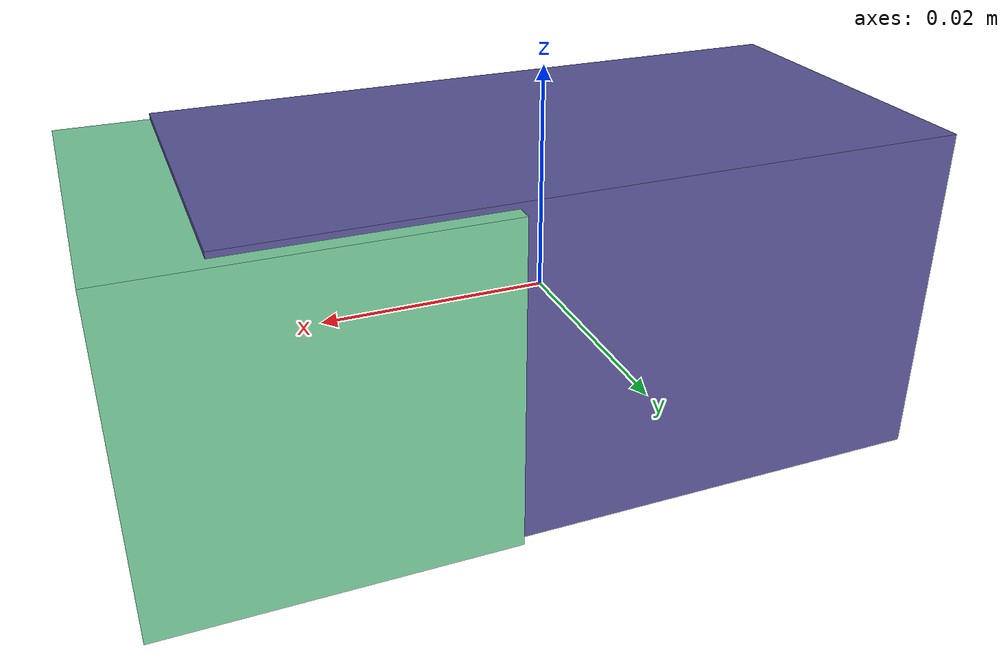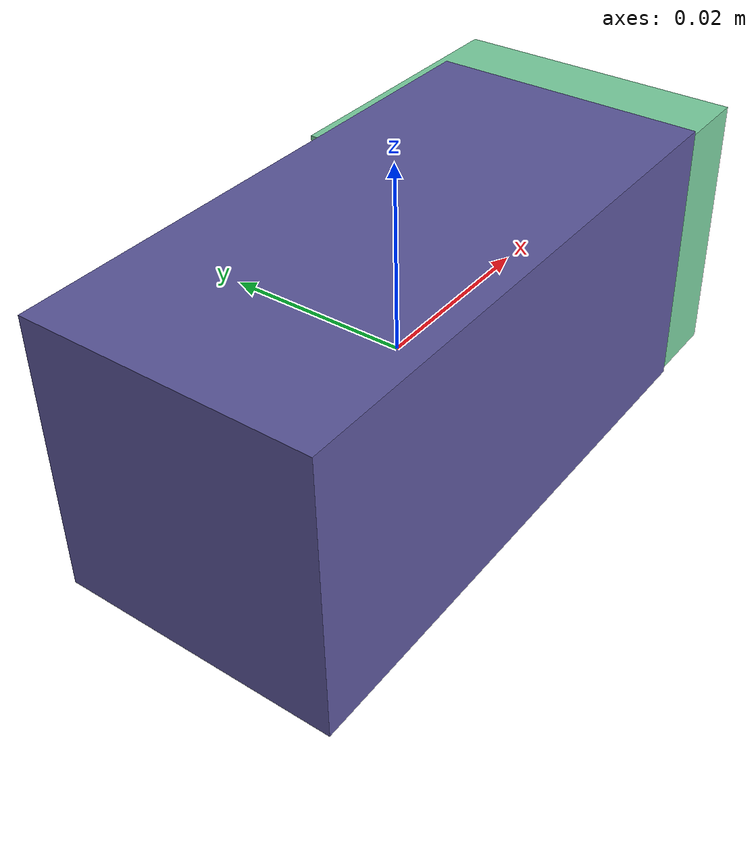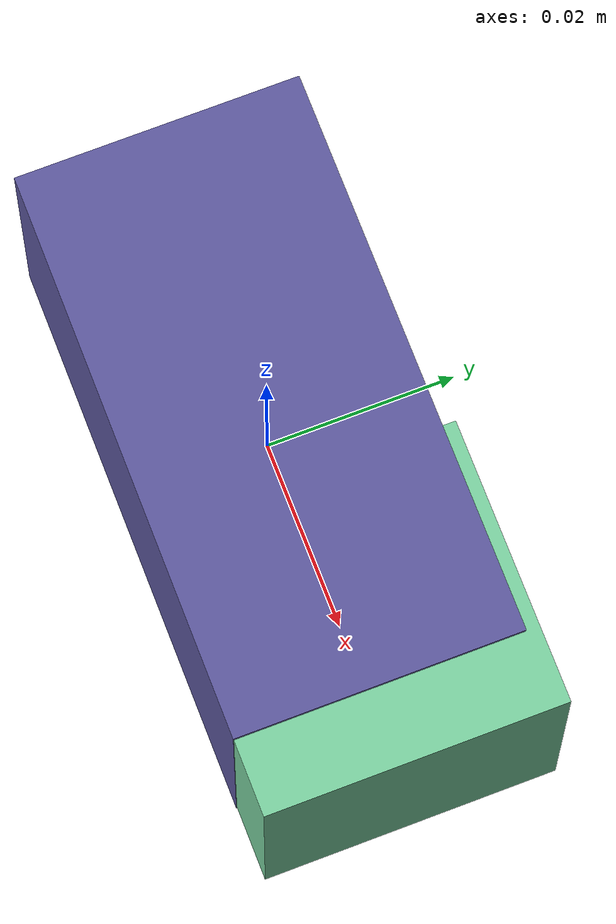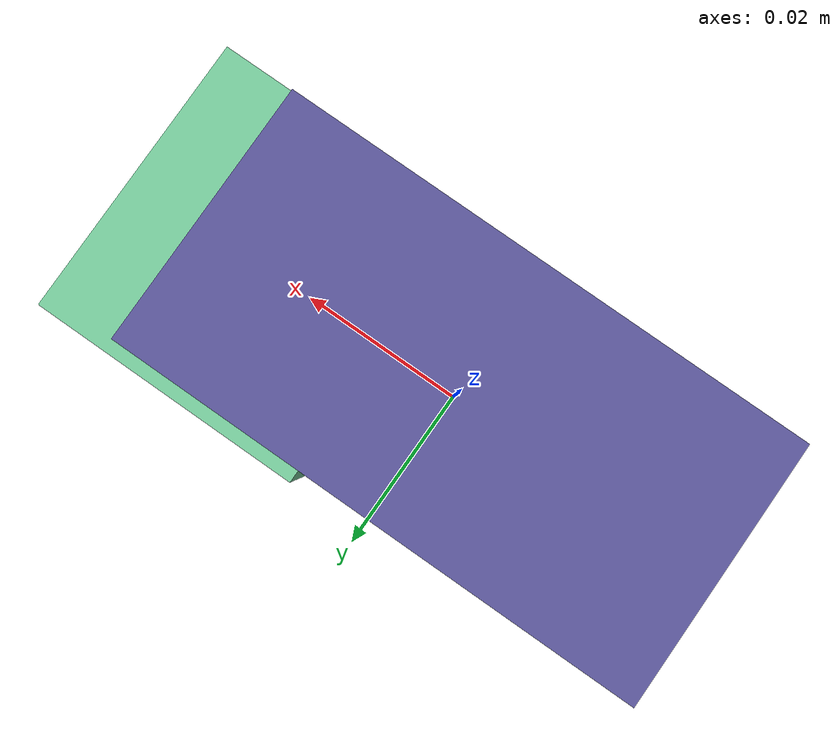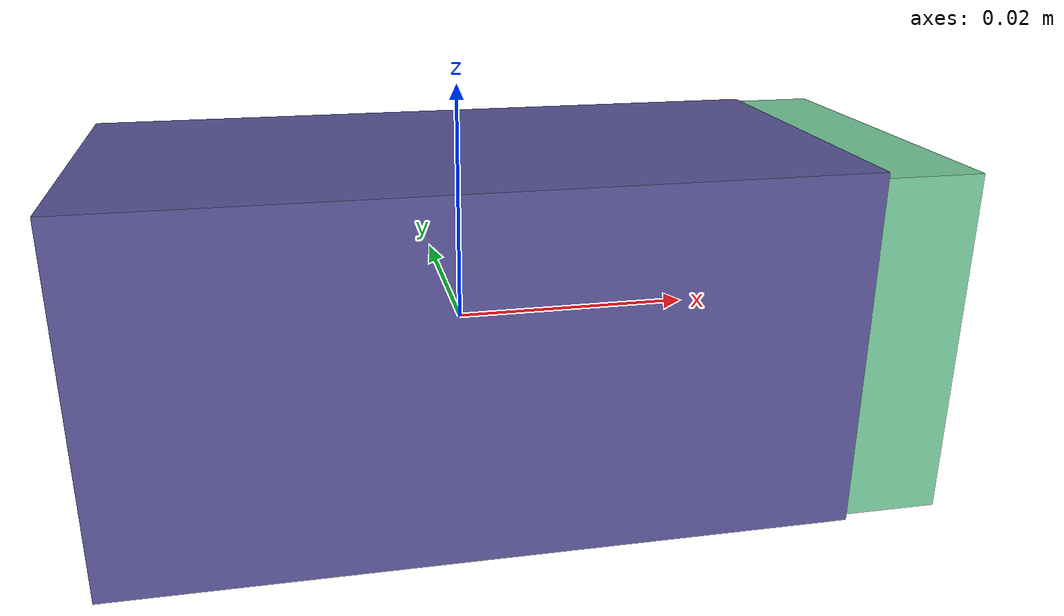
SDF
<sdf version="1.4"><world name="default"><model name="object0"><link name="link1"><pose>0 0 0 0 0 0</pose><inertial><pose>0 0 0 0 0 0</pose><mass>0.03273769193272248</mass><inertia><ixx>4.910653789908372e-06</ixx><ixy>0</ixy><iyy>1.2482428301748466e-05</iyy><ixz>0</ixz><iyz>0</iyz><izz>1.2482428301748466e-05</izz></inertia></inertial><visual name="link1_visual"><pose>0 0  0 0 0 0</pose><geometry><box><size>0.060625355430967566 0.03 0.03</size></box></geometry><material><diffuse>0.35732090875483963 0.33796262632482016 0.6094197993558177 1</diffuse></material></visual><collision><pose>0 0  0 0 0 0</pose><geometry><box><size>0.060625355430967566 0.03 0.03</size></box></geometry></collision></link><link name="link2"><pose>0.023290502330606384 0.0007479168685517898 0 0 0 0</pose><inertial><pose>0 0 0 0 0 0</pose><mass>0.016935620570326146</mass><inertia><ixx>2.5750489311368704e-06</ixx><ixy>0</ixy><iyy>2.4570762844114845e-06</iyy><ixz>0</ixz><iyz>0</iyz><izz>2.6583157322743073e-06</izz></inertia></inertial><visual name="link2_visual"><pose>0 0  0 0 0 0</pose><geometry><box><size>0.03 0.03136226031541879 0.028999999999999998</size></box></geometry><material><diffuse>0.4741969623034161 0.8089999759169773 0.620106235546455 1</diffuse></material></visual><collision><pose>0 0  0 0 0 0</pose><geometry><box><size>0.03 0.03136226031541879 0.028999999999999998</size></box></geometry></collision></link><joint name="link_joint_0" type="fixed"><parent>link1</parent><child>link2</child><pose>0 0 0 0 0 0</pose><axis><xyz>0 0 1</xyz></axis></joint></model></world></sdf>
